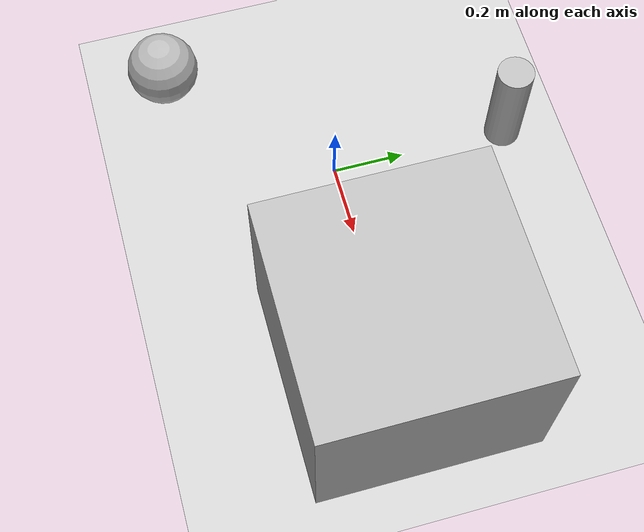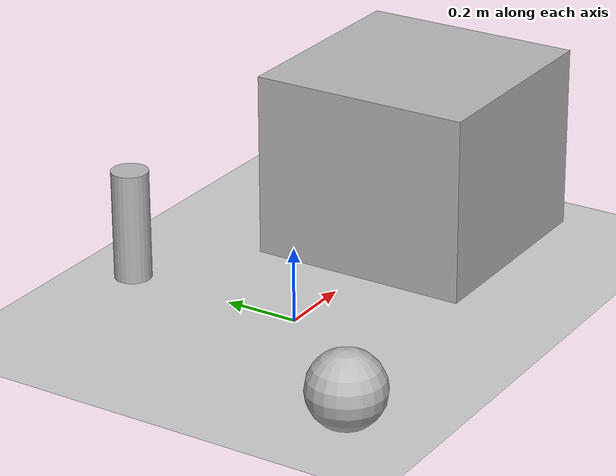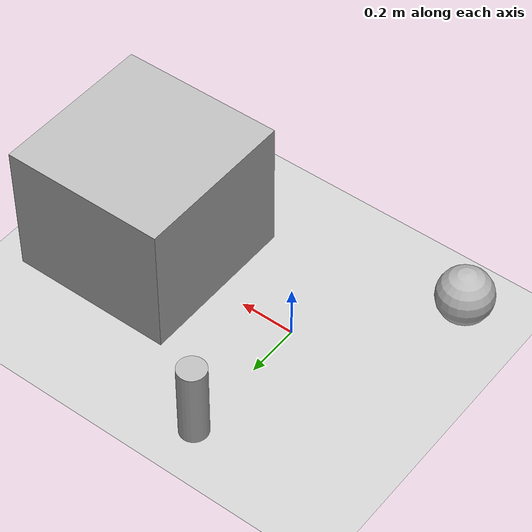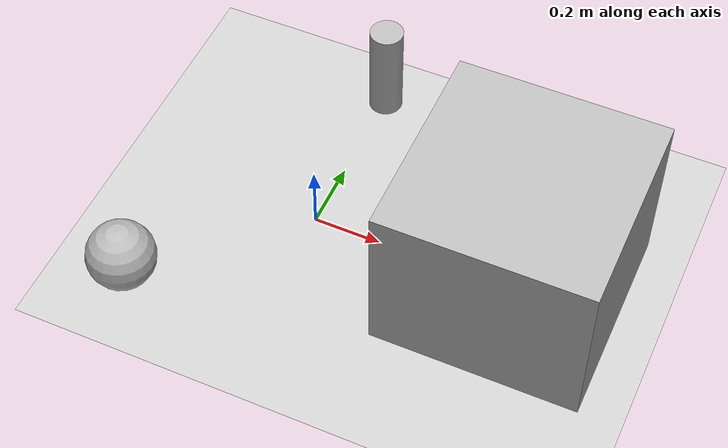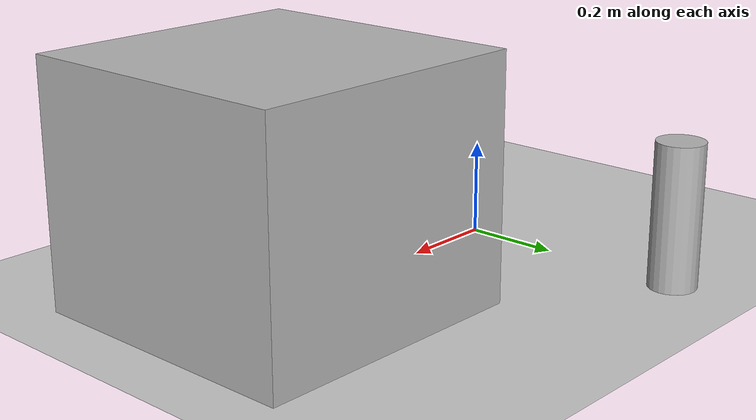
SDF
<?xml version="1.0" ?>
<!-- generated by generate_world_sdf.sh from config/robots.json static_objects -->
<sdf version="1.6">
  <world name="empty">
    <physics name="1ms" type="ignored">
      <max_step_size>0.001</max_step_size>
      <real_time_factor>1.0</real_time_factor>
    </physics>
    <plugin filename="ignition-gazebo-physics-system" name="gz::sim::systems::Physics"/>
    <plugin filename="ignition-gazebo-user-commands-system" name="gz::sim::systems::UserCommands"/>
    <plugin filename="ignition-gazebo-scene-broadcaster-system" name="gz::sim::systems::SceneBroadcaster"/>
    <plugin filename="ignition-gazebo-contact-system" name="gz::sim::systems::Contact"/>

    <light type="directional" name="sun">
      <cast_shadows>true</cast_shadows>
      <pose>0 0 10 0 0 0</pose>
      <diffuse>0.8 0.8 0.8 1</diffuse>
      <specular>0.2 0.2 0.2 1</specular>
      <attenuation>
        <range>1000</range>
        <constant>0.9</constant>
        <linear>0.01</linear>
        <quadratic>0.001</quadratic>
      </attenuation>
      <direction>-0.5 0.1 -0.9</direction>
    </light>

    <model name="ground_plane">
      <static>true</static>
      <link name="link">
        <collision name="collision">
          <geometry><plane><normal>0 0 1</normal><size>100 100</size></plane></geometry>
        </collision>
        <visual name="visual">
          <geometry><plane><normal>0 0 1</normal><size>100 100</size></plane></geometry>
          <material>
            <ambient>0.8 0.8 0.8 1</ambient>
            <diffuse>0.8 0.8 0.8 1</diffuse>
            <specular>0.8 0.8 0.8 1</specular>
          </material>
        </visual>
      </link>
    </model>

    <model name="table">
      <static>true</static>
      <pose>0.6 0.0 0.25 0.0 0.0 0.0</pose>
      <link name="link">
        <collision name="collision"><geometry><box><size>0.6 0.6 0.5</size></box></geometry></collision>
        <visual name="visual"><geometry><box><size>0.6 0.6 0.5</size></box></geometry></visual>
      </link>
    </model>
    <model name="beaker_post">
      <static>true</static>
      <pose>0.0 0.5 0.15 0.0 0.0 0.0</pose>
      <link name="link">
        <collision name="collision"><geometry><cylinder><radius>0.05</radius><length>0.3</length></cylinder></geometry></collision>
        <visual name="visual"><geometry><cylinder><radius>0.05</radius><length>0.3</length></cylinder></geometry></visual>
      </link>
    </model>
    <model name="marker_ball">
      <static>true</static>
      <pose>-0.4 -0.4 0.1 0.0 0.0 0.0</pose>
      <link name="link">
        <collision name="collision"><geometry><sphere><radius>0.1</radius></sphere></geometry></collision>
        <visual name="visual"><geometry><sphere><radius>0.1</radius></sphere></geometry></visual>
      </link>
    </model>
  </world>
</sdf>
